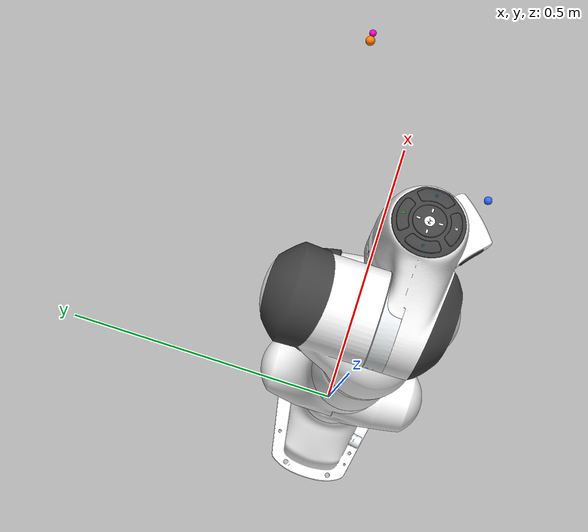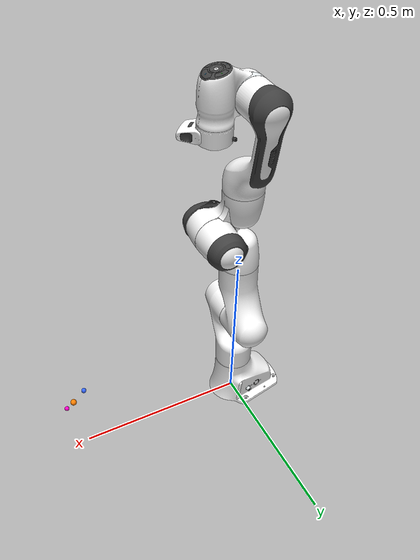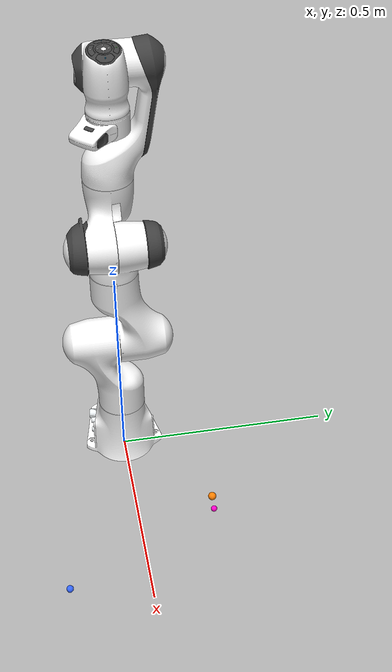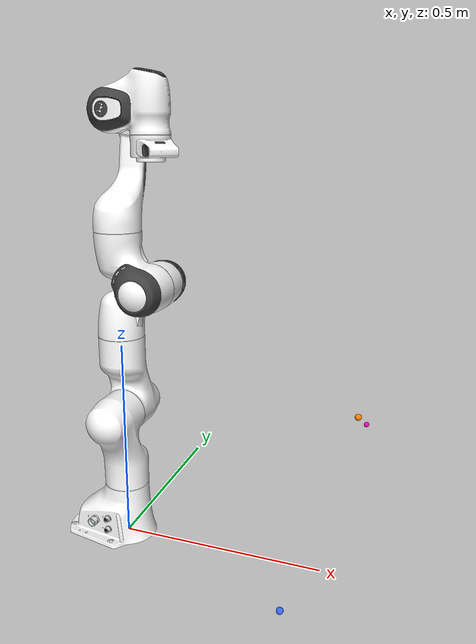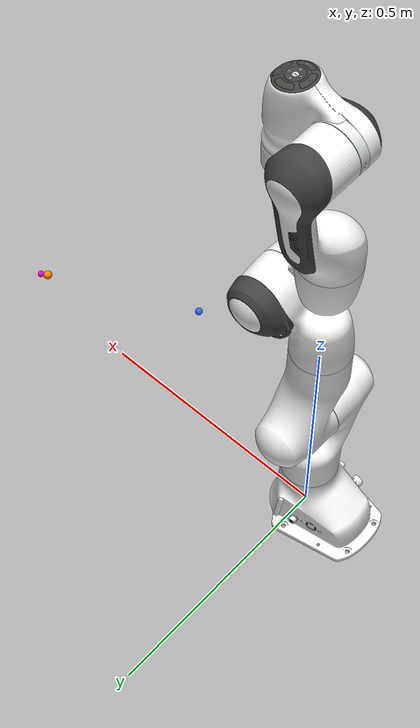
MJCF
<mujoco model="feeding p0">
  <include file="../robots/panda_torque.xml"/>

  <option timestep="0.001" gravity="0 0 -9.81" integrator="implicitfast" solver="Newton" iterations="50" cone="elliptic" impratio="10"/>

  <default>
    <default class="task">
      <geom friction="0.5 0.005 0.0001" solref="0.005 1" solimp="0.9 0.95 0.001" condim="3" group="3"/>
    </default>
    <default class="scene_motor">
      <motor ctrllimited="true" forcelimited="true" gear="1"/>
    </default>
  </default>

  <visual>
    <headlight diffuse="0.6 0.6 0.6" ambient="0.3 0.3 0.3" specular="0 0 0"/>
    <global azimuth="140" elevation="-25"/>
  </visual>

  <asset>
    <texture type="skybox" builtin="gradient" rgb1="0.3 0.5 0.7" rgb2="0 0 0" width="512" height="3072"/>
    <texture type="2d" name="groundplane" builtin="checker" mark="edge" rgb1="0.2 0.3 0.4" rgb2="0.1 0.2 0.3"
      markrgb="0.8 0.8 0.8" width="300" height="300"/>
    <material name="groundplane" texture="groundplane" texuniform="true" texrepeat="5 5" reflectance="0.2"/>
  </asset>

  <worldbody>
    <light pos="0 0 1.5" dir="0 0 -1" directional="true"/>
    <camera name="overview" pos="1.35 -1.05 0.85" xyaxes="0.62 0.78 0 -0.28 0.22 0.93"/>
    <geom name="floor" type="plane" pos="0 0 -0.25" size="0 0 0.05" material="groundplane" class="task"/>
    <geom name="table" type="box" pos="0.55 -0.02 -0.04" size="0.38 0.48 0.02" class="task" rgba="0.45 0.36 0.28 1"/>

    <body name="plate" pos="0.45 -0.18 0">
      <geom name="plate_pedestal" type="box" pos="0 0 -0.009" size="0.04 0.04 0.011" class="task" margin="0.002" rgba="0.55 0.55 0.55 1"/>
      <geom name="plate_bottom" type="box" pos="0 0 0.006" size="0.09 0.09 0.004" class="task" margin="0.002" rgba="0.85 0.85 0.88 1"/>
      <geom name="plate_rim_py" type="box" pos="0 0.094 0.016" size="0.098 0.004 0.006" class="task" margin="0.002" rgba="0.8 0.8 0.84 1"/>
      <geom name="plate_rim_ny" type="box" pos="0 -0.094 0.016" size="0.098 0.004 0.006" class="task" margin="0.002" rgba="0.8 0.8 0.84 1"/>
      <geom name="plate_rim_px" type="box" pos="0.094 0 0.016" size="0.004 0.09 0.006" class="task" margin="0.002" rgba="0.8 0.8 0.84 1"/>
      <geom name="plate_rim_nx_a" type="box" pos="-0.094 0.055 0.016" size="0.004 0.035 0.006" class="task" margin="0.002" rgba="0.8 0.8 0.84 1"/>
      <geom name="plate_rim_nx_b" type="box" pos="-0.094 -0.055 0.016" size="0.004 0.035 0.006" class="task" margin="0.002" rgba="0.8 0.8 0.84 1"/>
      <site name="plate_frame" pos="0 0 0.01" size="0.008" rgba="0.2 0.4 1 1"/>
    </body>

    <body name="food" pos="0.45 -0.18 0.03">
      <freejoint name="food_joint"/>
      <inertial mass="0.003" pos="0 0 0" diaginertia="7.2e-8 7.2e-8 7.2e-8"/>
      <geom name="food_box" type="box" size="0.006 0.006 0.006" mass="0.003" class="task" friction="0.15 0.005 0.0001" rgba="0.85 0.45 0.15 1"/>
    </body>

    <body name="head" pos="0.55 0.12 0.35">
      <joint name="head_x" type="slide" axis="1 0 0" range="-0.02 0.02" damping="5" armature="0.01"/>
      <joint name="head_y" type="slide" axis="0 1 0" range="-0.02 0.02" damping="5" armature="0.01"/>
      <joint name="head_z" type="slide" axis="0 0 1" range="-0.02 0.02" damping="5" armature="0.01"/>
      <joint name="head_yaw" type="hinge" axis="0 0 1" range="-0.15 0.15" damping="0.4" armature="0.01"/>
      <inertial mass="1" pos="0.02 0 0" diaginertia="0.02 0.02 0.02"/>
      <geom name="mouth_upper" type="box" pos="0.004 0 0.017" size="0.008 0.029 0.002" class="task" rgba="0.9 0.7 0.7 1"/>
      <geom name="mouth_left" type="box" pos="0.02 0.027 0" size="0.02 0.002 0.019" class="task" rgba="0.9 0.75 0.75 1"/>
      <geom name="mouth_right" type="box" pos="0.02 -0.027 0" size="0.02 0.002 0.019" class="task" rgba="0.9 0.75 0.75 1"/>
      <geom name="mouth_back" type="box" pos="0.042 0 0" size="0.002 0.029 0.019" class="task" rgba="0.85 0.65 0.65 1"/>
      <site name="mouth_entry" pos="0 0 0" size="0.008" rgba="1 0.5 0 1"/>
      <body name="jaw" pos="0 0 -0.015">
        <joint name="jaw" type="hinge" axis="0 1 0" range="-0.05 0.45" damping="0.05" armature="0.001"/>
        <inertial mass="0.1" pos="0.02 0 -0.004" diaginertia="4e-4 4e-4 4e-4"/>
        <geom name="jaw_floor" type="box" pos="0.02 0 -0.002" size="0.02 0.023 0.002" class="task" rgba="0.8 0.55 0.55 1"/>
        <geom name="jaw_lip" type="box" pos="0.001 0 -0.002" size="0.004 0.025 0.002" class="task" rgba="0.85 0.6 0.6 1"/>
        <site name="mouth_receiver" pos="0.02 0 0" size="0.006" rgba="1 0 0.8 1"/>
      </body>
    </body>
  </worldbody>

  <actuator>
    <motor class="scene_motor" name="head_fx" joint="head_x" ctrlrange="-30 30" forcerange="-30 30"/>
    <motor class="scene_motor" name="head_fy" joint="head_y" ctrlrange="-30 30" forcerange="-30 30"/>
    <motor class="scene_motor" name="head_fz" joint="head_z" ctrlrange="-30 30" forcerange="-30 30"/>
    <motor class="scene_motor" name="head_tau_yaw" joint="head_yaw" ctrlrange="-2 2" forcerange="-2 2"/>
    <motor class="scene_motor" name="jaw_tau" joint="jaw" ctrlrange="-0.4 0.4" forcerange="-0.4 0.4"/>
  </actuator>

  <contact>
    <exclude body1="head" body2="jaw"/>
  </contact>
</mujoco>

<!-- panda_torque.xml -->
<mujoco model="panda torque">
  <compiler angle="radian" meshdir="../third_party/franka_emika_panda/assets" autolimits="true"/>

  <default>
    <default class="panda">
      <material specular="0.5" shininess="0.25"/>
      <joint armature="0.1" damping="1" axis="0 0 1" range="-2.8973 2.8973"/>

      <default class="panda/visual">
        <geom type="mesh" contype="0" conaffinity="0" group="2"/>
      </default>
      <default class="panda/collision">
        <geom type="mesh" group="3"/>
      </default>
      <site size="0.001" rgba="0.5 0.5 0.5 0.3" group="4"/>
    </default>
  </default>

  <default>
    <default class="tool">
      <geom contype="1" conaffinity="1" group="3" friction="0.5 0.005 0.0001" solref="0.005 1" solimp="0.9 0.95 0.001" condim="3" density="0"/>
    </default>
    <default class="arm_motor">
      <motor ctrllimited="true" forcelimited="true" gear="1"/>
    </default>
  </default>

  <asset>
    <material class="panda" name="white" rgba="1 1 1 1"/>
    <material class="panda" name="off_white" rgba="0.901961 0.921569 0.929412 1"/>
    <material class="panda" name="dark_grey" rgba="0.25 0.25 0.25 1"/>
    <material class="panda" name="green" rgba="0 1 0 1"/>
    <material class="panda" name="light_blue" rgba="0.039216 0.541176 0.780392 1"/>

    <!-- Collision meshes -->
    <mesh name="link0_c" file="link0.stl"/>
    <mesh name="link1_c" file="link1.stl"/>
    <mesh name="link2_c" file="link2.stl"/>
    <mesh name="link3_c" file="link3.stl"/>
    <mesh name="link4_c" file="link4.stl"/>
    <mesh name="link5_c0" file="link5_collision_0.obj"/>
    <mesh name="link5_c1" file="link5_collision_1.obj"/>
    <mesh name="link5_c2" file="link5_collision_2.obj"/>
    <mesh name="link6_c" file="link6.stl"/>
    <mesh name="link7_c" file="link7.stl"/>

    <!-- Visual meshes -->
    <mesh file="link0_0.obj"/>
    <mesh file="link0_1.obj"/>
    <mesh file="link0_2.obj"/>
    <mesh file="link0_3.obj"/>
    <mesh file="link0_4.obj"/>
    <mesh file="link0_5.obj"/>
    <mesh file="link0_7.obj"/>
    <mesh file="link0_8.obj"/>
    <mesh file="link0_9.obj"/>
    <mesh file="link0_10.obj"/>
    <mesh file="link0_11.obj"/>
    <mesh file="link1.obj"/>
    <mesh file="link2.obj"/>
    <mesh file="link3_0.obj"/>
    <mesh file="link3_1.obj"/>
    <mesh file="link3_2.obj"/>
    <mesh file="link3_3.obj"/>
    <mesh file="link4_0.obj"/>
    <mesh file="link4_1.obj"/>
    <mesh file="link4_2.obj"/>
    <mesh file="link4_3.obj"/>
    <mesh file="link5_0.obj"/>
    <mesh file="link5_1.obj"/>
    <mesh file="link5_2.obj"/>
    <mesh file="link6_0.obj"/>
    <mesh file="link6_1.obj"/>
    <mesh file="link6_2.obj"/>
    <mesh file="link6_3.obj"/>
    <mesh file="link6_4.obj"/>
    <mesh file="link6_5.obj"/>
    <mesh file="link6_6.obj"/>
    <mesh file="link6_7.obj"/>
    <mesh file="link6_8.obj"/>
    <mesh file="link6_9.obj"/>
    <mesh file="link6_10.obj"/>
    <mesh file="link6_11.obj"/>
    <mesh file="link6_12.obj"/>
    <mesh file="link6_13.obj"/>
    <mesh file="link6_14.obj"/>
    <mesh file="link6_15.obj"/>
    <mesh file="link6_16.obj"/>
    <mesh file="link7_0.obj"/>
    <mesh file="link7_1.obj"/>
    <mesh file="link7_2.obj"/>
    <mesh file="link7_3.obj"/>
    <mesh file="link7_4.obj"/>
    <mesh file="link7_5.obj"/>
    <mesh file="link7_6.obj"/>
    <mesh file="link7_7.obj"/>
  </asset>

  <worldbody>
    <light name="top" pos="0 0 2" mode="trackcom"/>
    <body name="link0" childclass="panda" gravcomp="0">
      <inertial mass="0.629769" pos="-0.041018 -0.00014 0.049974"
        fullinertia="0.00315 0.00388 0.004285 8.2904e-7 0.00015 8.2299e-6"/>
      <geom mesh="link0_0" material="off_white" class="panda/visual"/>
      <geom mesh="link0_1" material="dark_grey" class="panda/visual"/>
      <geom mesh="link0_2" material="off_white" class="panda/visual"/>
      <geom mesh="link0_3" material="dark_grey" class="panda/visual"/>
      <geom mesh="link0_4" material="off_white" class="panda/visual"/>
      <geom mesh="link0_5" material="dark_grey" class="panda/visual"/>
      <geom mesh="link0_7" material="white" class="panda/visual"/>
      <geom mesh="link0_8" material="white" class="panda/visual"/>
      <geom mesh="link0_9" material="dark_grey" class="panda/visual"/>
      <geom mesh="link0_10" material="off_white" class="panda/visual"/>
      <geom mesh="link0_11" material="white" class="panda/visual"/>
      <geom mesh="link0_c" class="panda/collision"/>
      <body name="link1" pos="0 0 0.333">
        <inertial mass="4.970684" pos="0.003875 0.002081 -0.04762"
          fullinertia="0.70337 0.70661 0.0091170 -0.00013900 0.0067720 0.019169"/>
        <joint name="joint1"/>
        <geom material="white" mesh="link1" class="panda/visual"/>
        <geom mesh="link1_c" class="panda/collision"/>
        <body name="link2" quat="1 -1 0 0">
          <inertial mass="0.646926" pos="-0.003141 -0.02872 0.003495"
            fullinertia="0.0079620 2.8110e-2 2.5995e-2 -3.925e-3 1.0254e-2 7.04e-4"/>
          <joint name="joint2" range="-1.7628 1.7628"/>
          <geom material="white" mesh="link2" class="panda/visual"/>
          <geom mesh="link2_c" class="panda/collision"/>
          <body name="link3" pos="0 -0.316 0" quat="1 1 0 0">
            <joint name="joint3"/>
            <inertial mass="3.228604" pos="2.7518e-2 3.9252e-2 -6.6502e-2"
              fullinertia="3.7242e-2 3.6155e-2 1.083e-2 -4.761e-3 -1.1396e-2 -1.2805e-2"/>
            <geom mesh="link3_0" material="white" class="panda/visual"/>
            <geom mesh="link3_1" material="white" class="panda/visual"/>
            <geom mesh="link3_2" material="white" class="panda/visual"/>
            <geom mesh="link3_3" material="dark_grey" class="panda/visual"/>
            <geom mesh="link3_c" class="panda/collision"/>
            <body name="link4" pos="0.0825 0 0" quat="1 1 0 0">
              <inertial mass="3.587895" pos="-5.317e-2 1.04419e-1 2.7454e-2"
                fullinertia="2.5853e-2 1.9552e-2 2.8323e-2 7.796e-3 -1.332e-3 8.641e-3"/>
              <joint name="joint4" range="-3.0718 -0.0698"/>
              <geom mesh="link4_0" material="white" class="panda/visual"/>
              <geom mesh="link4_1" material="white" class="panda/visual"/>
              <geom mesh="link4_2" material="dark_grey" class="panda/visual"/>
              <geom mesh="link4_3" material="white" class="panda/visual"/>
              <geom mesh="link4_c" class="panda/collision"/>
              <body name="link5" pos="-0.0825 0.384 0" quat="1 -1 0 0">
                <inertial mass="1.225946" pos="-1.1953e-2 4.1065e-2 -3.8437e-2"
                  fullinertia="3.5549e-2 2.9474e-2 8.627e-3 -2.117e-3 -4.037e-3 2.29e-4"/>
                <joint name="joint5"/>
                <geom mesh="link5_0" material="dark_grey" class="panda/visual"/>
                <geom mesh="link5_1" material="white" class="panda/visual"/>
                <geom mesh="link5_2" material="white" class="panda/visual"/>
                <geom mesh="link5_c0" class="panda/collision"/>
                <geom mesh="link5_c1" class="panda/collision"/>
                <geom mesh="link5_c2" class="panda/collision"/>
                <body name="link6" quat="1 1 0 0">
                  <inertial mass="1.666555" pos="6.0149e-2 -1.4117e-2 -1.0517e-2"
                    fullinertia="1.964e-3 4.354e-3 5.433e-3 1.09e-4 -1.158e-3 3.41e-4"/>
                  <joint name="joint6" range="-0.0175 3.7525"/>
                  <geom mesh="link6_0" material="off_white" class="panda/visual"/>
                  <geom mesh="link6_1" material="white" class="panda/visual"/>
                  <geom mesh="link6_2" material="dark_grey" class="panda/visual"/>
                  <geom mesh="link6_3" material="white" class="panda/visual"/>
                  <geom mesh="link6_4" material="white" class="panda/visual"/>
                  <geom mesh="link6_5" material="white" class="panda/visual"/>
                  <geom mesh="link6_6" material="white" class="panda/visual"/>
                  <geom mesh="link6_7" material="light_blue" class="panda/visual"/>
                  <geom mesh="link6_8" material="light_blue" class="panda/visual"/>
                  <geom mesh="link6_9" material="dark_grey" class="panda/visual"/>
                  <geom mesh="link6_10" material="dark_grey" class="panda/visual"/>
                  <geom mesh="link6_11" material="white" class="panda/visual"/>
                  <geom mesh="link6_12" material="green" class="panda/visual"/>
                  <geom mesh="link6_13" material="white" class="panda/visual"/>
                  <geom mesh="link6_14" material="dark_grey" class="panda/visual"/>
                  <geom mesh="link6_15" material="dark_grey" class="panda/visual"/>
                  <geom mesh="link6_16" material="white" class="panda/visual"/>
                  <geom mesh="link6_c" class="panda/collision"/>
                  <body name="link7" pos="0.088 0 0" quat="1 1 0 0">
                    <inertial mass="7.35522e-01" pos="1.0517e-2 -4.252e-3 6.1597e-2"
                      fullinertia="1.2516e-2 1.0027e-2 4.815e-3 -4.28e-4 -1.196e-3 -7.41e-4"/>
                    <joint name="joint7"/>
                    <geom mesh="link7_0" material="white" class="panda/visual"/>
                    <geom mesh="link7_1" material="dark_grey" class="panda/visual"/>
                    <geom mesh="link7_2" material="dark_grey" class="panda/visual"/>
                    <geom mesh="link7_3" material="dark_grey" class="panda/visual"/>
                    <geom mesh="link7_4" material="dark_grey" class="panda/visual"/>
                    <geom mesh="link7_5" material="dark_grey" class="panda/visual"/>
                    <geom mesh="link7_6" material="dark_grey" class="panda/visual"/>
                    <geom mesh="link7_7" material="white" class="panda/visual"/>
                    <geom mesh="link7_c" class="panda/collision"/>
                    <body name="tool_mount" pos="0 0 0.107" quat="0 1 0 0" gravcomp="0">
                      <site name="ft_site" pos="0 0 0" size="0.008" rgba="1 0.2 0.2 1"/>
                      <geom name="tool_mount_geom" type="cylinder" size="0.016 0.008" pos="0 0 0.008" mass="0.03" rgba="0.35 0.35 0.38 1" class="tool" friction="0.15 0.005 0.0001"/>
                      <geom name="tool_handle" type="box" size="0.05 0.004 0.003" pos="0.062 0 0.012" mass="0.02" rgba="0.55 0.55 0.58 1" class="tool" friction="0.15 0.005 0.0001"/>
                      <geom name="bowl_bottom" type="box" size="0.0245 0.017 0.001" pos="0.1345 0 0.015" mass="0.012" rgba="0.75 0.75 0.8 1" class="tool" friction="0.15 0.005 0.0001"/>
                      <geom name="bowl_back" type="box" size="0.0015 0.017 0.0045" pos="0.1105 0 0.0195" mass="0.005" rgba="0.7 0.7 0.75 1" class="tool" friction="0.15 0.005 0.0001"/>
                      <geom name="bowl_left" type="box" size="0.016 0.001 0.0045" pos="0.128 0.016 0.0195" mass="0.005" rgba="0.7 0.7 0.75 1" class="tool" friction="0.15 0.005 0.0001"/>
                      <geom name="bowl_right" type="box" size="0.016 0.001 0.0045" pos="0.128 -0.016 0.0195" mass="0.005" rgba="0.7 0.7 0.75 1" class="tool" friction="0.15 0.005 0.0001"/>
                      <geom name="bowl_front" type="box" size="0.0015 0.017 0.001" pos="0.1585 0 0.015" mass="0.003" rgba="0.65 0.65 0.7 1" class="tool" friction="0.15 0.005 0.0001"/>
                      <site name="tcp" pos="0.1345 0 0.016" size="0.006" rgba="0.1 0.9 0.2 1"/>
                    </body>
                  </body>
                </body>
              </body>
            </body>
          </body>
        </body>
      </body>
    </body>
  </worldbody>

  <actuator>
    <motor class="arm_motor" name="arm_tau_1" joint="joint1" ctrlrange="-87 87" forcerange="-87 87"/>
    <motor class="arm_motor" name="arm_tau_2" joint="joint2" ctrlrange="-87 87" forcerange="-87 87"/>
    <motor class="arm_motor" name="arm_tau_3" joint="joint3" ctrlrange="-87 87" forcerange="-87 87"/>
    <motor class="arm_motor" name="arm_tau_4" joint="joint4" ctrlrange="-87 87" forcerange="-87 87"/>
    <motor class="arm_motor" name="arm_tau_5" joint="joint5" ctrlrange="-12 12" forcerange="-12 12"/>
    <motor class="arm_motor" name="arm_tau_6" joint="joint6" ctrlrange="-12 12" forcerange="-12 12"/>
    <motor class="arm_motor" name="arm_tau_7" joint="joint7" ctrlrange="-12 12" forcerange="-12 12"/>
  </actuator>

  <contact>
    <exclude body1="link0" body2="link1"/>
    <exclude body1="link7" body2="tool_mount"/>
  </contact>

  <sensor>
    <force name="ft_force" site="ft_site"/>
    <torque name="ft_torque" site="ft_site"/>
  </sensor>
</mujoco>
